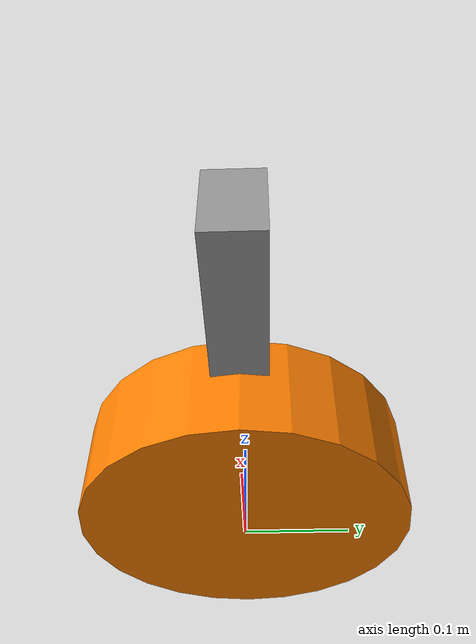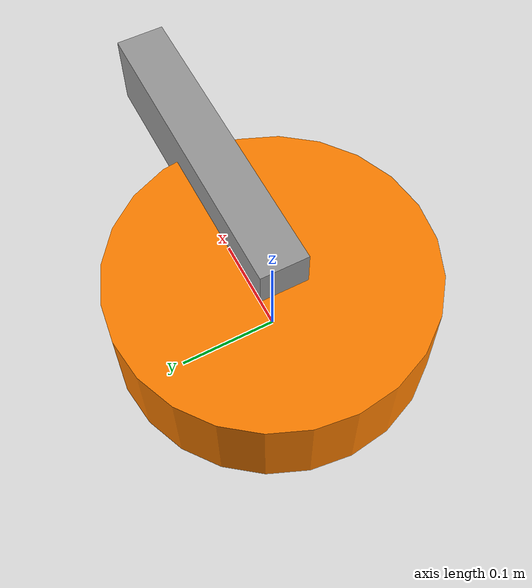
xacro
<?xml version="1.0"?>
<robot name="my_robot" xmlns:xacro="http://ros.org/wiki/xacro">

  <xacro:property name="radius" value="0.16"/>
  <xacro:property name="height" value="0.10"/>

  <material name="orange">
    <color rgba="1.0 0.5 0.0 1.0"/>
  </material>

  <material name="gray">
    <color rgba="0.6 0.6 0.6 1.0"/>
  </material>

  <link name="base_footprint">
    <!-- Virtual frame sitting on the ground to anchor base_link -->
  </link>

  <joint name="base_footprint_to_base_link" type="fixed">
    <parent link="base_footprint"/>
    <child link="base_link"/>
    <origin xyz="0 0 0" rpy="0 0 0"/>
  </joint>

  <link name="base_link">
    <visual>
      <origin xyz="0 0 ${height/2}" rpy="0 0 0"/>
      <geometry>
        <cylinder radius="${radius}" length="${height}"/>
      </geometry>
      <material name="orange"/>
    </visual>

    <visual>
      <origin xyz="${radius * 0.85} 0 ${height}" rpy="0 0 0"/>
      <geometry>
        <box size="${2 * radius} 0.05 0.08"/>
      </geometry>
      <material name="gray"/>
    </visual>

    <collision>
      <origin xyz="0 0 ${height/2}" rpy="0 0 0"/>
      <geometry>
        <cylinder radius="${radius}" length="${height}"/>
      </geometry>
    </collision>

    <inertial>
      <mass value="4.0"/>
      <origin xyz="0 0 ${height/2}" rpy="0 0 0"/>
      <inertia ixx="0.1" iyy="0.1" izz="0.1" ixy="0" ixz="0" iyz="0"/>
    </inertial>
  </link>
</robot>
